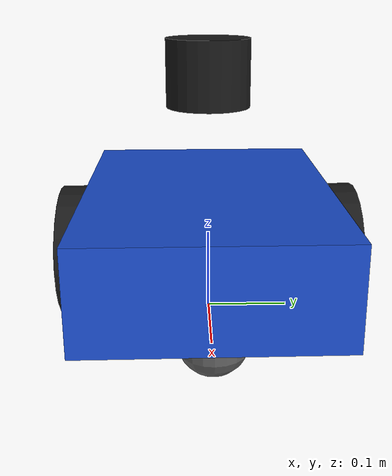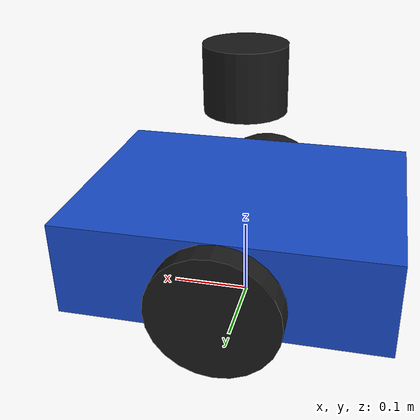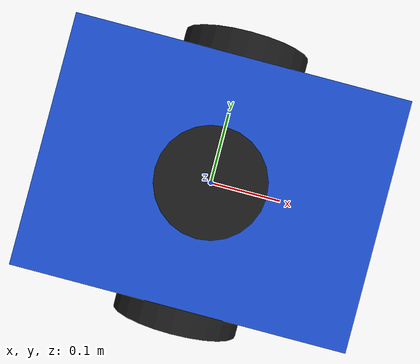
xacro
<?xml version="1.0"?>
<robot xmlns:xacro="http://www.ros.org/wiki/xacro" name="pnc_diff_drive">
  <xacro:property name="base_length" value="0.40"/>
  <xacro:property name="base_width" value="0.30"/>
  <xacro:property name="base_height" value="0.12"/>
  <xacro:property name="wheel_radius" value="0.08"/>
  <xacro:property name="wheel_width" value="0.04"/>
  <xacro:property name="wheel_y" value="0.16"/>
  <xacro:property name="wheel_separation" value="${2 * wheel_y}"/>

  <link name="base_link">
    <visual>
      <!-- 底盘底部抬高 0.04m 离地间隙：轮子着地承重，底盘悬空（否则底盘先着地轮子空转） -->
      <origin xyz="0 0 0.10" rpy="0 0 0"/>
      <geometry>
        <box size="${base_length} ${base_width} ${base_height}"/>
      </geometry>
      <material name="blue">
        <color rgba="0.1 0.3 0.8 1.0"/>
      </material>
    </visual>
    <collision>
      <origin xyz="0 0 0.10" rpy="0 0 0"/>
      <geometry>
        <box size="${base_length} ${base_width} ${base_height}"/>
      </geometry>
    </collision>
    <inertial>
      <origin xyz="0 0 ${base_height / 2}" rpy="0 0 0"/>
      <mass value="8.0"/>
      <inertia ixx="0.12" ixy="0.0" ixz="0.0" iyy="0.18" iyz="0.0" izz="0.22"/>
    </inertial>
  </link>

  <link name="left_wheel">
    <visual>
      <origin xyz="0 0 0" rpy="1.57079632679 0 0"/>
      <geometry>
        <cylinder radius="${wheel_radius}" length="${wheel_width}"/>
      </geometry>
      <material name="black">
        <color rgba="0.1 0.1 0.1 1.0"/>
      </material>
    </visual>
    <collision>
      <origin xyz="0 0 0" rpy="1.57079632679 0 0"/>
      <geometry>
        <cylinder radius="${wheel_radius}" length="${wheel_width}"/>
      </geometry>
    </collision>
    <inertial>
      <origin xyz="0 0 0" rpy="1.57079632679 0 0"/>
      <mass value="0.8"/>
      <inertia ixx="0.0015" ixy="0.0" ixz="0.0" iyy="0.0015" iyz="0.0" izz="0.0025"/>
    </inertial>
  </link>

  <link name="right_wheel">
    <visual>
      <origin xyz="0 0 0" rpy="1.57079632679 0 0"/>
      <geometry>
        <cylinder radius="${wheel_radius}" length="${wheel_width}"/>
      </geometry>
      <material name="black">
        <color rgba="0.1 0.1 0.1 1.0"/>
      </material>
    </visual>
    <collision>
      <origin xyz="0 0 0" rpy="1.57079632679 0 0"/>
      <geometry>
        <cylinder radius="${wheel_radius}" length="${wheel_width}"/>
      </geometry>
    </collision>
    <inertial>
      <origin xyz="0 0 0" rpy="1.57079632679 0 0"/>
      <mass value="0.8"/>
      <inertia ixx="0.0015" ixy="0.0" ixz="0.0" iyy="0.0015" iyz="0.0" izz="0.0025"/>
    </inertial>
  </link>

  <!-- 万向轮 x2（参考 MoveXBot：球 + continuous joint + 低摩擦） -->
  <link name="front_support_wheel">
    <visual>
      <origin xyz="0 0 0" rpy="0 0 0"/>
      <geometry>
        <sphere radius="${wheel_radius / 2}"/>
      </geometry>
      <material name="gray">
        <color rgba="0.4 0.4 0.4 1.0"/>
      </material>
    </visual>
    <collision>
      <origin xyz="0 0 0" rpy="0 0 0"/>
      <geometry>
        <sphere radius="${wheel_radius / 2}"/>
      </geometry>
    </collision>
    <inertial>
      <mass value="0.2"/>
      <inertia ixx="0.0001" ixy="0.0" ixz="0.0" iyy="0.0001" iyz="0.0" izz="0.0001"/>
    </inertial>
  </link>
  <link name="back_support_wheel">
    <visual>
      <origin xyz="0 0 0" rpy="0 0 0"/>
      <geometry>
        <sphere radius="${wheel_radius / 2}"/>
      </geometry>
      <material name="gray">
        <color rgba="0.4 0.4 0.4 1.0"/>
      </material>
    </visual>
    <collision>
      <origin xyz="0 0 0" rpy="0 0 0"/>
      <geometry>
        <sphere radius="${wheel_radius / 2}"/>
      </geometry>
    </collision>
    <inertial>
      <mass value="0.2"/>
      <inertia ixx="0.0001" ixy="0.0" ixz="0.0" iyy="0.0001" iyz="0.0" izz="0.0001"/>
    </inertial>
  </link>

  <joint name="left_wheel_joint" type="continuous">
    <parent link="base_link"/>
    <child link="left_wheel"/>
    <origin xyz="0 ${wheel_y} ${wheel_radius}" rpy="0 0 0"/>
    <axis xyz="0 1 0"/>
  </joint>

  <joint name="right_wheel_joint" type="continuous">
    <parent link="base_link"/>
    <child link="right_wheel"/>
    <origin xyz="0 ${-wheel_y} ${wheel_radius}" rpy="0 0 0"/>
    <axis xyz="0 1 0"/>
  </joint>

  <joint name="front_support_joint" type="continuous">
    <parent link="base_link"/>
    <child link="front_support_wheel"/>
    <origin xyz="${base_length / 2 - 0.04} 0 ${wheel_radius / 2}" rpy="0 0 0"/>
    <axis xyz="1 1 1"/>
  </joint>
  <joint name="back_support_joint" type="continuous">
    <parent link="base_link"/>
    <child link="back_support_wheel"/>
    <origin xyz="${-base_length / 2 + 0.04} 0 ${wheel_radius / 2}" rpy="0 0 0"/>
    <axis xyz="1 1 1"/>
  </joint>

  <!-- 3D LiDAR: Velodyne VLP-16 风格（16 线），车顶安装 -->
  <link name="velodyne">
    <visual>
      <origin xyz="0 0 0" rpy="0 0 0"/>
      <geometry>
        <cylinder radius="0.05" length="0.08"/>
      </geometry>
      <material name="dark">
        <color rgba="0.1 0.1 0.1 1.0"/>
      </material>
    </visual>
    <collision>
      <origin xyz="0 0 0" rpy="0 0 0"/>
      <geometry>
        <cylinder radius="0.05" length="0.08"/>
      </geometry>
    </collision>
    <inertial>
      <mass value="0.6"/>
      <inertia ixx="0.0004" ixy="0.0" ixz="0.0" iyy="0.0004" iyz="0.0" izz="0.0005"/>
    </inertial>
  </link>

  <joint name="velodyne_joint" type="fixed">
    <parent link="base_link"/>
    <child link="velodyne"/>
    <origin xyz="0 0 0.30" rpy="0 0 0"/>
  </joint>

  <gazebo reference="base_link">
    <material>Gazebo/Blue</material>
  </gazebo>
  <gazebo reference="left_wheel">
    <material>Gazebo/Black</material>
    <collision>
      <surface>
        <friction>
          <ode>
            <mu>1.5</mu>
            <mu2>1.5</mu2>
          </ode>
        </friction>
        <contact>
          <ode>
            <kp>1e8</kp>
            <kd>1.0</kd>
          </ode>
        </contact>
      </surface>
    </collision>
  </gazebo>
  <gazebo reference="right_wheel">
    <material>Gazebo/Black</material>
    <collision>
      <surface>
        <friction>
          <ode>
            <mu>1.5</mu>
            <mu2>1.5</mu2>
          </ode>
        </friction>
        <contact>
          <ode>
            <kp>1e8</kp>
            <kd>1.0</kd>
          </ode>
        </contact>
      </surface>
    </collision>
  </gazebo>
  <gazebo reference="front_support_wheel">
    <material>Gazebo/Grey</material>
    <mu1>0.01</mu1>
    <mu2>0.01</mu2>
    <slip1>0.05</slip1>
    <slip2>0.05</slip2>
  </gazebo>
  <gazebo reference="back_support_wheel">
    <material>Gazebo/Grey</material>
    <mu1>0.01</mu1>
    <mu2>0.01</mu2>
    <slip1>0.05</slip1>
    <slip2>0.05</slip2>
  </gazebo>

  <gazebo>
    <plugin filename="gz-sim-diff-drive-system"
            name="gz::sim::systems::DiffDrive">
      <left_joint>left_wheel_joint</left_joint>
      <right_joint>right_wheel_joint</right_joint>
      <wheel_separation>${wheel_separation}</wheel_separation>
      <wheel_radius>${wheel_radius}</wheel_radius>
      <topic>cmd_vel</topic>
      <odom_topic>odom</odom_topic>
      <tf_topic>tf</tf_topic>
      <frame_id>odom</frame_id>
      <child_frame_id>base_link</child_frame_id>
      <odom_publish_frequency>50</odom_publish_frequency>
      <max_linear_velocity>1.0</max_linear_velocity>
      <min_linear_velocity>-1.0</min_linear_velocity>
      <max_angular_velocity>1.5</max_angular_velocity>
      <min_angular_velocity>-1.5</min_angular_velocity>
    </plugin>
  </gazebo>

  <!-- Velodyne VLP-16 风格：16 线，水平 360°，垂直 ±15°，10Hz -->
  <gazebo reference="velodyne">
    <sensor type="gpu_lidar" name="velodyne_sensor">
      <pose>0 0 0 0 0 0</pose>
      <visualize>false</visualize>
      <update_rate>10</update_rate>
      <topic>/points</topic>
      <gz_frame_id>velodyne</gz_frame_id>
      <lidar>
        <scan>
          <horizontal>
            <!-- 720（1.0°/列）：1800 列时 gz 软件渲染只能跑 ~5Hz，LIO-SAM 需要稳定 10Hz -->
            <samples>720</samples>
            <resolution>1</resolution>
            <min_angle>-3.14159265</min_angle>
            <max_angle>3.14159265</max_angle>
          </horizontal>
          <vertical>
            <samples>16</samples>
            <resolution>1</resolution>
            <min_angle>-0.261799</min_angle>
            <max_angle>0.261799</max_angle>
          </vertical>
        </scan>
        <range>
          <min>0.5</min>
          <max>100.0</max>
          <resolution>0.01</resolution>
        </range>
        <noise>
          <type>gaussian</type>
          <mean>0.0</mean>
          <stddev>0.01</stddev>
        </noise>
      </lidar>
    </sensor>
  </gazebo>
  <!-- 坡道场景：提高轮子摩擦，减少上坡打滑（默认 mu=1.0 时实测只有 ~0.05 m/s） -->
  <gazebo reference="left_wheel">
    <mu1>2.0</mu1>
    <mu2>2.0</mu2>
    <kp>1000000.0</kp>
    <kd>100.0</kd>
  </gazebo>
  <gazebo reference="right_wheel">
    <mu1>2.0</mu1>
    <mu2>2.0</mu2>
    <kp>1000000.0</kp>
    <kd>100.0</kd>
  </gazebo>
  <gazebo reference="front_support_wheel">
    <mu1>0.2</mu1>
    <mu2>0.2</mu2>
  </gazebo>
  <gazebo reference="back_support_wheel">
    <mu1>0.2</mu1>
    <mu2>0.2</mu2>
  </gazebo>
  <!-- IMU（LIO-SAM 3D 定位需要，200Hz） -->
  <gazebo reference="base_link">
    <sensor type="imu" name="imu_sensor">
      <always_on>true</always_on>
      <update_rate>200</update_rate>
      <visualize>false</visualize>
      <topic>/imu</topic>
      <gz_frame_id>base_link</gz_frame_id>
      <imu>
        <angular_velocity>
          <x><noise type="gaussian"><mean>0.0</mean><stddev>0.0002</stddev></noise></x>
          <y><noise type="gaussian"><mean>0.0</mean><stddev>0.0002</stddev></noise></y>
          <z><noise type="gaussian"><mean>0.0</mean><stddev>0.0002</stddev></noise></z>
        </angular_velocity>
        <linear_acceleration>
          <x><noise type="gaussian"><mean>0.0</mean><stddev>0.0017</stddev></noise></x>
          <y><noise type="gaussian"><mean>0.0</mean><stddev>0.0017</stddev></noise></y>
          <z><noise type="gaussian"><mean>0.0</mean><stddev>0.0017</stddev></noise></z>
        </linear_acceleration>
      </imu>
    </sensor>
  </gazebo>
</robot>
